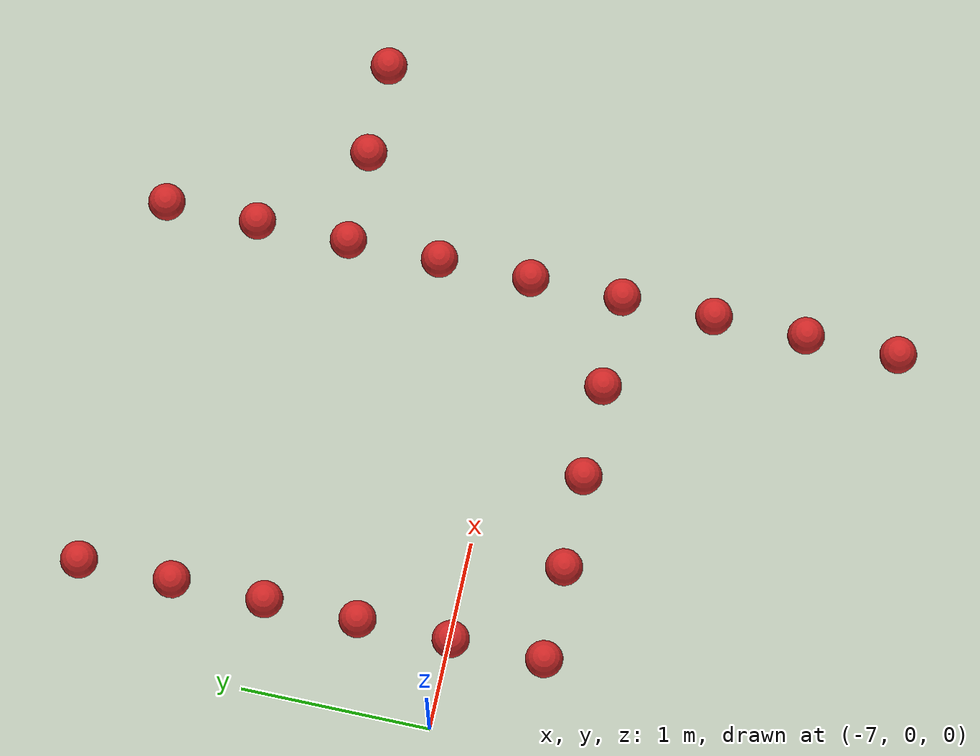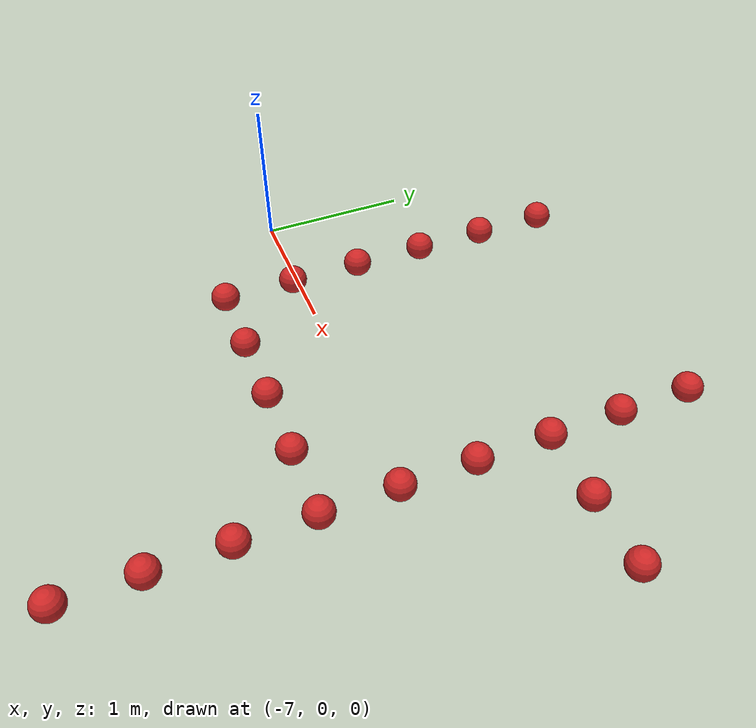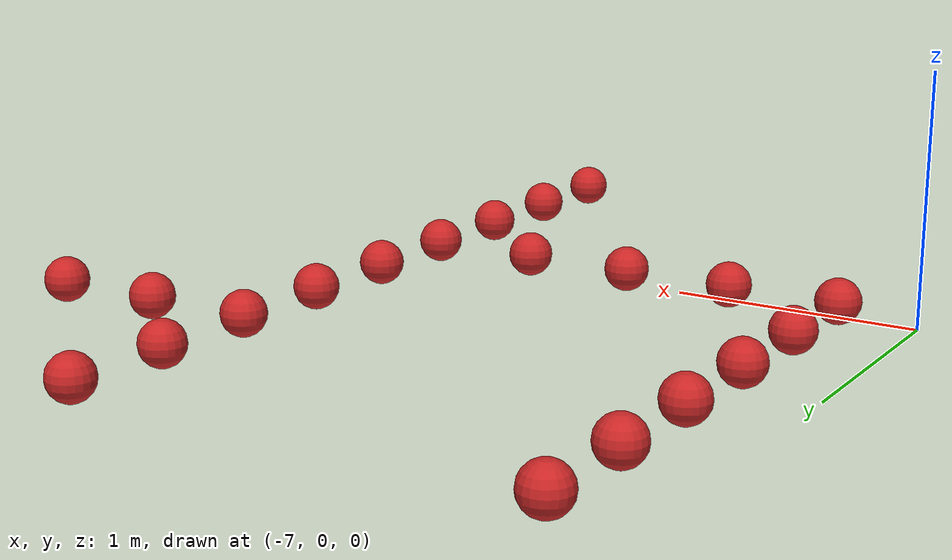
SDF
<sdf version="1.6">
 <model name="level1">
  <link name="Score_Point13">
   <collision name="Score_Point_Collision13">
    <geometry><sphere><radius>0.1</radius></sphere></geometry>
   </collision>
   <visual name="Score_Point_Visual13">
    <geometry><sphere><radius>0.1</radius></sphere></geometry>
    <material>
     <script><uri>file://media/materials/scripts/gazebo.material</uri><name>Gazebo/Red</name></script>
     <ambient>1 1 1 1</ambient>
    </material>
    <meta><layer>0</layer></meta>
   </visual>
   <pose>-6.5 -0.5 -0.08 0 0 0</pose>
   <script><uri>file://scripts/score_point_script.py</uri></script>
  </link>
  <link name="Score_Point14">
   <collision name="Score_Point_Collision14">
    <geometry><sphere><radius>0.1</radius></sphere></geometry>
   </collision>
   <visual name="Score_Point_Visual14">
    <geometry><sphere><radius>0.1</radius></sphere></geometry>
    <material>
     <script><uri>file://media/materials/scripts/gazebo.material</uri><name>Gazebo/Red</name></script>
     <ambient>1 1 1 1</ambient>
    </material>
    <meta><layer>0</layer></meta>
   </visual>
   <pose>-6.5 0.0 -0.08 0 0 0</pose>
   <script><uri>file://scripts/score_point_script.py</uri></script>
  </link>
  <link name="Score_Point15">
   <collision name="Score_Point_Collision15">
    <geometry><sphere><radius>0.1</radius></sphere></geometry>
   </collision>
   <visual name="Score_Point_Visual15">
    <geometry><sphere><radius>0.1</radius></sphere></geometry>
    <material>
     <script><uri>file://media/materials/scripts/gazebo.material</uri><name>Gazebo/Red</name></script>
     <ambient>1 1 1 1</ambient>
    </material>
    <meta><layer>0</layer></meta>
   </visual>
   <pose>-6.5 0.5 -0.08 0 0 0</pose>
   <script><uri>file://scripts/score_point_script.py</uri></script>
  </link>
  <link name="Score_Point16">
   <collision name="Score_Point_Collision16">
    <geometry><sphere><radius>0.1</radius></sphere></geometry>
   </collision>
   <visual name="Score_Point_Visual16">
    <geometry><sphere><radius>0.1</radius></sphere></geometry>
    <material>
     <script><uri>file://media/materials/scripts/gazebo.material</uri><name>Gazebo/Red</name></script>
     <ambient>1 1 1 1</ambient>
    </material>
    <meta><layer>0</layer></meta>
   </visual>
   <pose>-6.5 1.0 -0.08 0 0 0</pose>
   <script><uri>file://scripts/score_point_script.py</uri></script>
  </link>
  <link name="Score_Point17">
   <collision name="Score_Point_Collision17">
    <geometry><sphere><radius>0.1</radius></sphere></geometry>
   </collision>
   <visual name="Score_Point_Visual17">
    <geometry><sphere><radius>0.1</radius></sphere></geometry>
    <material>
     <script><uri>file://media/materials/scripts/gazebo.material</uri><name>Gazebo/Red</name></script>
     <ambient>1 1 1 1</ambient>
    </material>
    <meta><layer>0</layer></meta>
   </visual>
   <pose>-6.5 1.5 -0.08 0 0 0</pose>
   <script><uri>file://scripts/score_point_script.py</uri></script>
  </link>
  <link name="Score_Point18">
   <collision name="Score_Point_Collision18">
    <geometry><sphere><radius>0.1</radius></sphere></geometry>
   </collision>
   <visual name="Score_Point_Visual18">
    <geometry><sphere><radius>0.1</radius></sphere></geometry>
    <material>
     <script><uri>file://media/materials/scripts/gazebo.material</uri><name>Gazebo/Red</name></script>
     <ambient>1 1 1 1</ambient>
    </material>
    <meta><layer>0</layer></meta>
   </visual>
   <pose>-6.5 2.0 -0.08 0 0 0</pose>
   <script><uri>file://scripts/score_point_script.py</uri></script>
  </link>
  <link name="Score_Point28">
   <collision name="Score_Point_Collision28">
    <geometry><sphere><radius>0.1</radius></sphere></geometry>
   </collision>
   <visual name="Score_Point_Visual28">
    <geometry><sphere><radius>0.1</radius></sphere></geometry>
    <material>
     <script><uri>file://media/materials/scripts/gazebo.material</uri><name>Gazebo/Red</name></script>
     <ambient>1 1 1 1</ambient>
    </material>
    <meta><layer>0</layer></meta>
   </visual>
   <pose>-6.0 -0.5 -0.08 0 0 0</pose>
   <script><uri>file://scripts/score_point_script.py</uri></script>
  </link>
  <link name="Score_Point33">
   <collision name="Score_Point_Collision33">
    <geometry><sphere><radius>0.1</radius></sphere></geometry>
   </collision>
   <visual name="Score_Point_Visual33">
    <geometry><sphere><radius>0.1</radius></sphere></geometry>
    <material>
     <script><uri>file://media/materials/scripts/gazebo.material</uri><name>Gazebo/Red</name></script>
     <ambient>1 1 1 1</ambient>
    </material>
    <meta><layer>0</layer></meta>
   </visual>
   <pose>-5.5 -0.5 -0.08 0 0 0</pose>
   <script><uri>file://scripts/score_point_script.py</uri></script>
  </link>
  <link name="Score_Point38">
   <collision name="Score_Point_Collision38">
    <geometry><sphere><radius>0.1</radius></sphere></geometry>
   </collision>
   <visual name="Score_Point_Visual38">
    <geometry><sphere><radius>0.1</radius></sphere></geometry>
    <material>
     <script><uri>file://media/materials/scripts/gazebo.material</uri><name>Gazebo/Red</name></script>
     <ambient>1 1 1 1</ambient>
    </material>
    <meta><layer>0</layer></meta>
   </visual>
   <pose>-5.0 -0.5 -0.08 0 0 0</pose>
   <script><uri>file://scripts/score_point_script.py</uri></script>
  </link>
  <link name="Score_Point52">
   <collision name="Score_Point_Collision52">
    <geometry><sphere><radius>0.1</radius></sphere></geometry>
   </collision>
   <visual name="Score_Point_Visual52">
    <geometry><sphere><radius>0.1</radius></sphere></geometry>
    <material>
     <script><uri>file://media/materials/scripts/gazebo.material</uri><name>Gazebo/Red</name></script>
     <ambient>1 1 1 1</ambient>
    </material>
    <meta><layer>0</layer></meta>
   </visual>
   <pose>-4.5 -2.0 -0.08 0 0 0</pose>
   <script><uri>file://scripts/score_point_script.py</uri></script>
  </link>
  <link name="Score_Point53">
   <collision name="Score_Point_Collision53">
    <geometry><sphere><radius>0.1</radius></sphere></geometry>
   </collision>
   <visual name="Score_Point_Visual53">
    <geometry><sphere><radius>0.1</radius></sphere></geometry>
    <material>
     <script><uri>file://media/materials/scripts/gazebo.material</uri><name>Gazebo/Red</name></script>
     <ambient>1 1 1 1</ambient>
    </material>
    <meta><layer>0</layer></meta>
   </visual>
   <pose>-4.5 -1.5 -0.08 0 0 0</pose>
   <script><uri>file://scripts/score_point_script.py</uri></script>
  </link>
  <link name="Score_Point54">
   <collision name="Score_Point_Collision54">
    <geometry><sphere><radius>0.1</radius></sphere></geometry>
   </collision>
   <visual name="Score_Point_Visual54">
    <geometry><sphere><radius>0.1</radius></sphere></geometry>
    <material>
     <script><uri>file://media/materials/scripts/gazebo.material</uri><name>Gazebo/Red</name></script>
     <ambient>1 1 1 1</ambient>
    </material>
    <meta><layer>0</layer></meta>
   </visual>
   <pose>-4.5 -1.0 -0.08 0 0 0</pose>
   <script><uri>file://scripts/score_point_script.py</uri></script>
  </link>
  <link name="Score_Point55">
   <collision name="Score_Point_Collision55">
    <geometry><sphere><radius>0.1</radius></sphere></geometry>
   </collision>
   <visual name="Score_Point_Visual55">
    <geometry><sphere><radius>0.1</radius></sphere></geometry>
    <material>
     <script><uri>file://media/materials/scripts/gazebo.material</uri><name>Gazebo/Red</name></script>
     <ambient>1 1 1 1</ambient>
    </material>
    <meta><layer>0</layer></meta>
   </visual>
   <pose>-4.5 -0.5 -0.08 0 0 0</pose>
   <script><uri>file://scripts/score_point_script.py</uri></script>
  </link>
  <link name="Score_Point56">
   <collision name="Score_Point_Collision56">
    <geometry><sphere><radius>0.1</radius></sphere></geometry>
   </collision>
   <visual name="Score_Point_Visual56">
    <geometry><sphere><radius>0.1</radius></sphere></geometry>
    <material>
     <script><uri>file://media/materials/scripts/gazebo.material</uri><name>Gazebo/Red</name></script>
     <ambient>1 1 1 1</ambient>
    </material>
    <meta><layer>0</layer></meta>
   </visual>
   <pose>-4.5 0.0 -0.08 0 0 0</pose>
   <script><uri>file://scripts/score_point_script.py</uri></script>
  </link>
  <link name="Score_Point57">
   <collision name="Score_Point_Collision57">
    <geometry><sphere><radius>0.1</radius></sphere></geometry>
   </collision>
   <visual name="Score_Point_Visual57">
    <geometry><sphere><radius>0.1</radius></sphere></geometry>
    <material>
     <script><uri>file://media/materials/scripts/gazebo.material</uri><name>Gazebo/Red</name></script>
     <ambient>1 1 1 1</ambient>
    </material>
    <meta><layer>0</layer></meta>
   </visual>
   <pose>-4.5 0.5 -0.08 0 0 0</pose>
   <script><uri>file://scripts/score_point_script.py</uri></script>
  </link>
  <link name="Score_Point58">
   <collision name="Score_Point_Collision58">
    <geometry><sphere><radius>0.1</radius></sphere></geometry>
   </collision>
   <visual name="Score_Point_Visual58">
    <geometry><sphere><radius>0.1</radius></sphere></geometry>
    <material>
     <script><uri>file://media/materials/scripts/gazebo.material</uri><name>Gazebo/Red</name></script>
     <ambient>1 1 1 1</ambient>
    </material>
    <meta><layer>0</layer></meta>
   </visual>
   <pose>-4.5 1.0 -0.08 0 0 0</pose>
   <script><uri>file://scripts/score_point_script.py</uri></script>
  </link>
  <link name="Score_Point59">
   <collision name="Score_Point_Collision59">
    <geometry><sphere><radius>0.1</radius></sphere></geometry>
   </collision>
   <visual name="Score_Point_Visual59">
    <geometry><sphere><radius>0.1</radius></sphere></geometry>
    <material>
     <script><uri>file://media/materials/scripts/gazebo.material</uri><name>Gazebo/Red</name></script>
     <ambient>1 1 1 1</ambient>
    </material>
    <meta><layer>0</layer></meta>
   </visual>
   <pose>-4.5 1.5 -0.08 0 0 0</pose>
   <script><uri>file://scripts/score_point_script.py</uri></script>
  </link>
  <link name="Score_Point60">
   <collision name="Score_Point_Collision60">
    <geometry><sphere><radius>0.1</radius></sphere></geometry>
   </collision>
   <visual name="Score_Point_Visual60">
    <geometry><sphere><radius>0.1</radius></sphere></geometry>
    <material>
     <script><uri>file://media/materials/scripts/gazebo.material</uri><name>Gazebo/Red</name></script>
     <ambient>1 1 1 1</ambient>
    </material>
    <meta><layer>0</layer></meta>
   </visual>
   <pose>-4.5 2.0 -0.08 0 0 0</pose>
   <script><uri>file://scripts/score_point_script.py</uri></script>
  </link>
  <link name="Score_Point70">
   <collision name="Score_Point_Collision70">
    <geometry><sphere><radius>0.1</radius></sphere></geometry>
   </collision>
   <visual name="Score_Point_Visual70">
    <geometry><sphere><radius>0.1</radius></sphere></geometry>
    <material>
     <script><uri>file://media/materials/scripts/gazebo.material</uri><name>Gazebo/Red</name></script>
     <ambient>1 1 1 1</ambient>
    </material>
    <meta><layer>0</layer></meta>
   </visual>
   <pose>-4.0 1.0 -0.08 0 0 0</pose>
   <script><uri>file://scripts/score_point_script.py</uri></script>
  </link>
  <link name="Score_Point76">
   <collision name="Score_Point_Collision76">
    <geometry><sphere><radius>0.1</radius></sphere></geometry>
   </collision>
   <visual name="Score_Point_Visual76">
    <geometry><sphere><radius>0.1</radius></sphere></geometry>
    <material>
     <script><uri>file://media/materials/scripts/gazebo.material</uri><name>Gazebo/Red</name></script>
     <ambient>1 1 1 1</ambient>
    </material>
    <meta><layer>0</layer></meta>
   </visual>
   <pose>-3.5 1.0 -0.08 0 0 0</pose>
   <script><uri>file://scripts/score_point_script.py</uri></script>
  </link>
  <static>1</static>
 </model>
</sdf>
